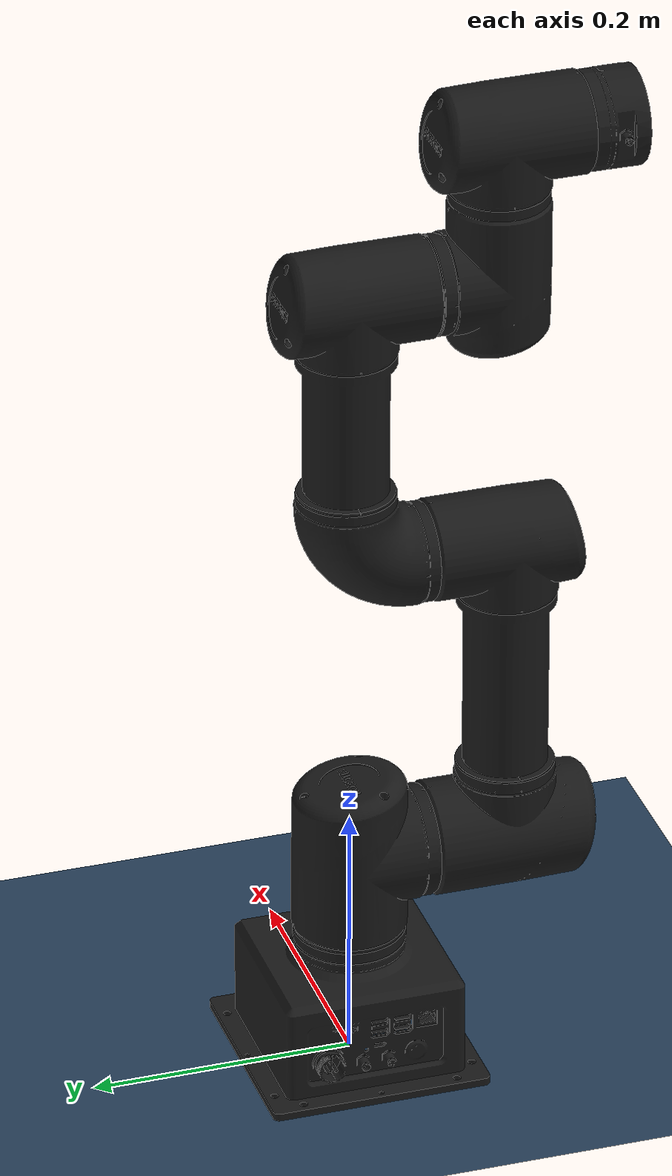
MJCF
<mujoco model="omy scene">
  <include file="omy_3m.xml"/>

  <statistic center="0.3 0 0.4" extent="1"/>

  <visual>
    <headlight diffuse="0.6 0.6 0.6" ambient="0.3 0.3 0.3" specular="0 0 0"/>
    <rgba haze="0.15 0.25 0.35 1"/>
    <global azimuth="120" elevation="-20"/>
  </visual>

  <asset>
    <texture type="skybox" builtin="gradient" rgb1="0.3 0.5 0.7" rgb2="0 0 0" width="512" height="3072"/>
    <texture type="2d" name="groundplane" builtin="checker" mark="edge" rgb1="0.2 0.3 0.4" rgb2="0.1 0.2 0.3"
      markrgb="0.8 0.8 0.8" width="300" height="300"/>
    <material name="groundplane" texture="groundplane" texuniform="true" texrepeat="5 5" reflectance="0.2"/>
  </asset>

  <worldbody>
    <light pos="0 0 1.5" dir="0 0 -1" directional="true"/>
    <geom name="floor" size="0 0 0.05" type="plane" material="groundplane"/>
  </worldbody>
</mujoco>

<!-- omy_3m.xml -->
<mujoco model="omy">
  <compiler angle="radian" meshdir="assets" autolimits="true"/>

  <option integrator="implicitfast"/>

  <default>
    <default class="omy">
      <joint frictionloss="0.1" armature="0.1"/>
      <position kp="800" dampratio="1"/>
      <!-- DY-80 motor: Joint 1, 2 -->
      <default class="DY-80">
        <position forcerange="-61.4 61.4"/>
        <default class="joint1">
          <joint axis="0 0 1" range="-6.283185 6.283185" damping="0.05"/>
        </default>
        <default class="joint2">
          <joint axis="0 1 0" range="-6.283185 6.283185" damping="0.1"/>
        </default>
      </default>
      <!-- DY-70 motor: Joint 3, 4, 5, 6 -->
      <default class="DY-70">
        <position forcerange="-31.7 31.7"/>
        <default class="joint3">
          <joint axis="0 1 0" range="-2.617994 2.617994" damping="0.1"/>
        </default>
        <default class="joint4">
          <joint axis="0 1 0" range="-6.283185 6.283185" damping="0.1"/>
        </default>
        <default class="joint5">
          <joint axis="0 0 1" range="-6.283185 6.283185" damping="0.1"/>
        </default>
        <default class="joint6">
          <joint axis="0 1 0" range="-6.283185 6.283185" damping="0.1"/>
        </default>
      </default>
      <!-- Visual / Collision -->
      <default class="visual">
        <geom type="mesh" contype="0" conaffinity="0" density="0" group="2"/>
      </default>
      <default class="collision">
        <geom type="cylinder" group="3"/>
      </default>
    </default>
  </default>

  <asset>
    <material name="black" rgba="0.1 0.1 0.1 1"/>
    <mesh name="base_unit" file="base_unit.stl" scale="0.001 0.001 0.001"/>
    <mesh name="link1" file="link1.stl" scale="0.001 0.001 0.001"/>
    <mesh name="link2" file="link2.stl" scale="0.001 0.001 0.001"/>
    <mesh name="link3" file="link3.stl" scale="0.001 0.001 0.001"/>
    <mesh name="link4" file="link4.stl" scale="0.001 0.001 0.001"/>
    <mesh name="link5" file="link5.stl" scale="0.001 0.001 0.001"/>
    <mesh name="link6" file="link6.stl" scale="0.001 0.001 0.001"/>
  </asset>

  <worldbody>
    <body name="base_unit" childclass="omy">
      <inertial mass="1.5287486" pos="-0.0040215824 0.0013083991 0.055073470"
        fullinertia="0.0046428203 0.0049736955 0.0064078321 0.000044405532 -0.00015049296 0.000020756047"/>
      <geom mesh="base_unit" material="black" class="visual"/>
      <geom name="base_unit_collision" class="collision" pos="0 0 0.03" size="0.08 0.025"/>
      <body name="link1" pos="0 0 0.1715">
        <inertial mass="2.0648832" pos="-0.00011063615 -0.0054711270 -0.015897733"
          fullinertia="0.0030332190 0.0027276724 0.0022826576 0.0000051792838 0.0000033357961 0.00017934953"/>
        <joint name="joint1" class="joint1"/>
        <geom mesh="link1" material="black" class="visual"/>
        <geom name="link1_collision" class="collision" pos="0 -0.01 -0.035" size="0.055 0.05"/>
        <body name="link2" pos="0 -0.1215 0">
          <inertial mass="3.6795395" pos="0.000011405379 0.016184244 0.10360634"
            fullinertia="0.051731918 0.050353401 0.0045014360 0.0000023958819 0.000057893960 -0.00043825716"/>
          <joint name="joint2" class="joint2"/>
          <geom mesh="link2" material="black" class="visual"/>
          <geom name="link2_collision" class="collision" pos="-0.005 -0.02 0.13" size="0.046 0.14"/>
          <body name="link3" pos="0 0 0.247">
            <inertial mass="2.3865916" pos="0.000078148689 0.10718481 0.14117267"
              fullinertia="0.022694399 0.021920087 0.0027761559 -0.00000094142428 -0.000018551757 0.00019179387"/>
            <joint name="joint3" class="joint3"/>
            <geom mesh="link3" material="black" class="visual"/>
            <geom name="link3_collision" class="collision" pos="0 0.125 0.08" size="0.042 0.095"/>
            <body name="link4" pos="0 0.1215 0.2195">
              <inertial mass="1.4002347" pos="-0.00013318256 -0.10746667 0.019090688"
                fullinertia="0.0017545679 0.0015652147 0.0012159839 -0.0000045863379 -0.0000017759142 0.00015339913"/>
              <joint name="joint4" class="joint4"/>
              <geom mesh="link4" material="black" class="visual"/>
              <geom name="link4_collision" class="collision" euler="1.57 0 0" size="0.045 0.05"/>
              <body name="link5" pos="0 -0.113 0">
                <inertial mass="1.4002347" pos="0.00013318256 -0.019090688 0.10996667"
                  fullinertia="0.0017545679 0.0012159839 0.0015652147 -0.0000017759143 -0.0000045863376 0.00015339913"/>
                <joint name="joint5" class="joint5"/>
                <geom mesh="link5" material="black" class="visual"/>
                <geom name="link5_collision" class="collision" pos="0 0.01 0.005" size="0.043 0.025"/>
                <body name="link6" pos="0 0 0.1155">
                  <inertial mass="0.32442692" pos="0.000011080146 -0.080594056 0.0093029337"
                    fullinertia="0.00019398849 0.00024913070 0.00016536751 0.00000021420132 -0.0000012342019 -0.0000038937348"/>
                  <joint name="joint6" class="joint6"/>
                  <geom mesh="link6" material="black" class="visual"/>
                  <geom name="link6_collision" class="collision" pos="0 -0.1 0" euler="1.57 0 0" size="0.09 0.11"/>
                  <site name="attachment_site" pos="0 -0.103 0"/>
                </body>
              </body>
            </body>
          </body>
        </body>
      </body>
    </body>
  </worldbody>

  <contact>
    <exclude body1="base_unit" body2="link1"/>
    <exclude body1="link1" body2="link2"/>
    <exclude body1="link2" body2="link3"/>
    <exclude body1="link3" body2="link4"/>
    <exclude body1="link3" body2="link5"/>
    <exclude body1="link4" body2="link5"/>
    <exclude body1="link4" body2="link6"/>
    <exclude body1="link5" body2="link6"/>
  </contact>

  <actuator>
    <position class="joint1" name="joint1" joint="joint1" inheritrange="1"/>
    <position class="joint2" name="joint2" joint="joint2" inheritrange="1"/>
    <position class="joint3" name="joint3" joint="joint3" inheritrange="1"/>
    <position class="joint4" name="joint4" joint="joint4" inheritrange="1"/>
    <position class="joint5" name="joint5" joint="joint5" inheritrange="1"/>
    <position class="joint6" name="joint6" joint="joint6" inheritrange="1"/>
  </actuator>

  <keyframe>
    <key name="home" qpos="0 0 0 0 0 0" ctrl="0 0 0 0 0 0"/>
  </keyframe>
</mujoco>
